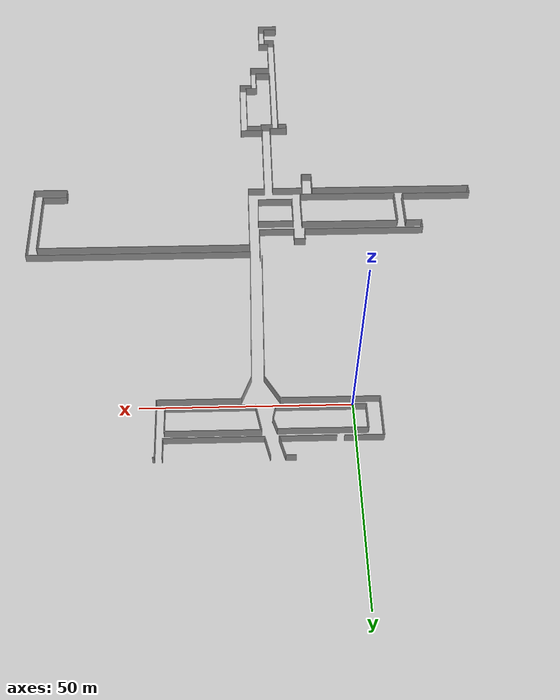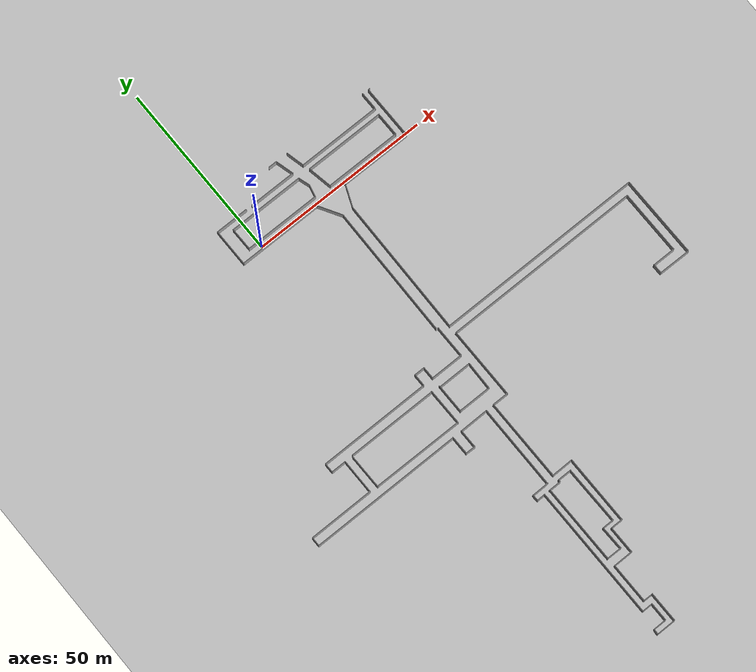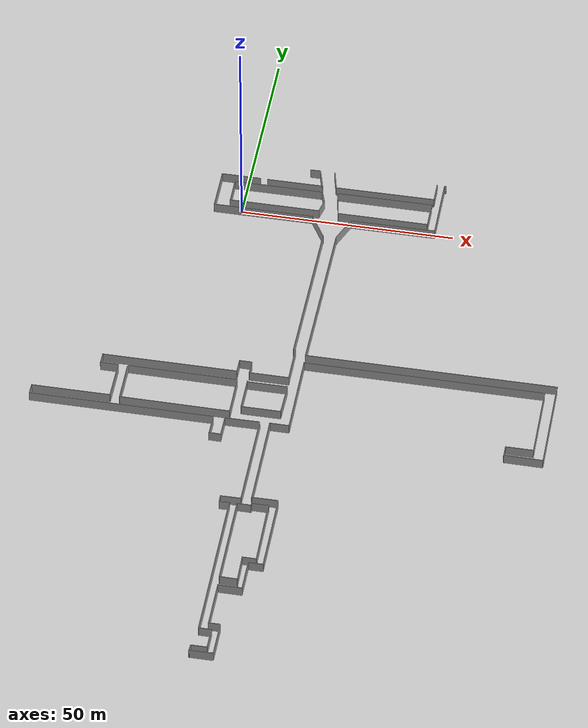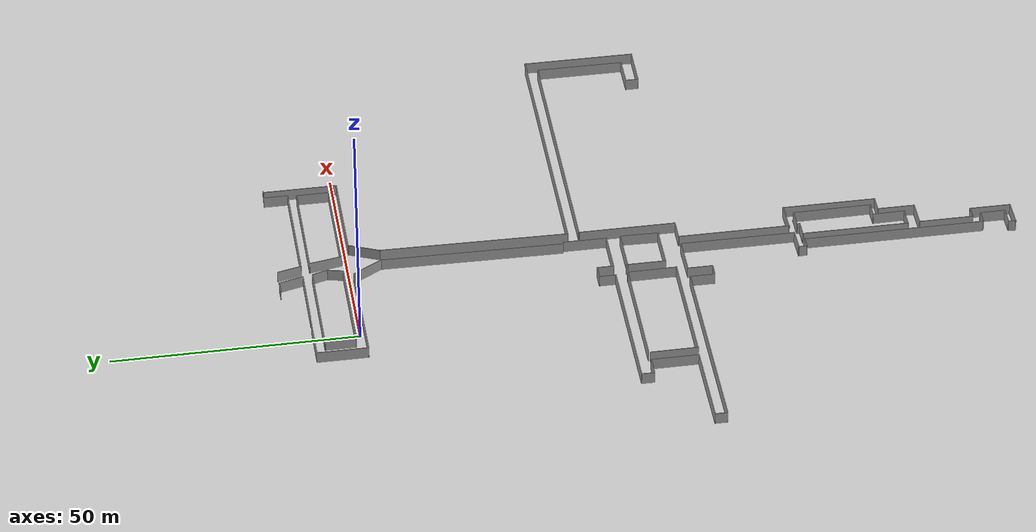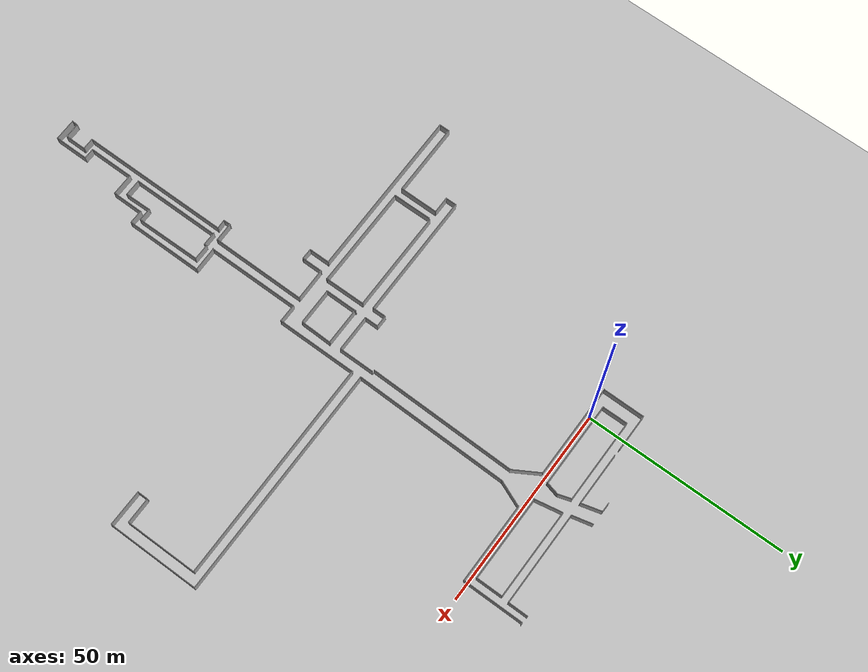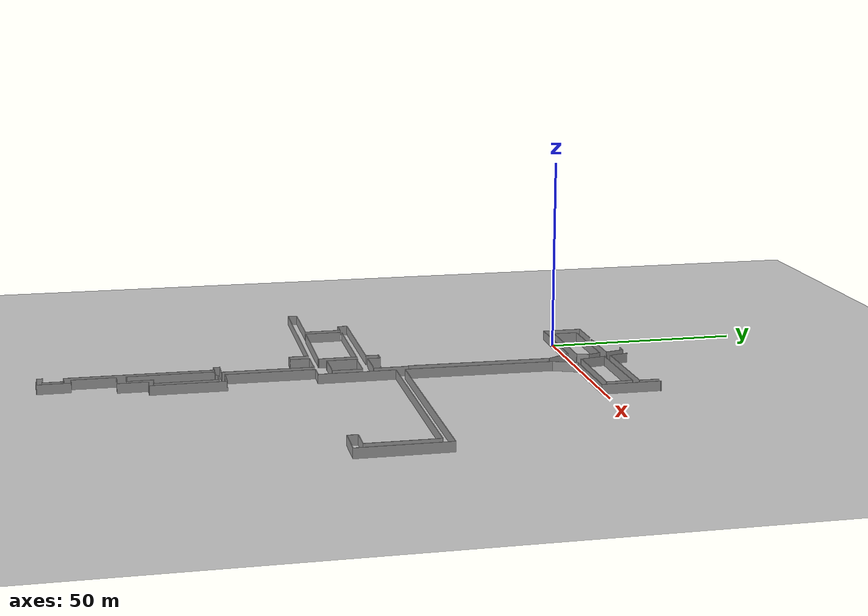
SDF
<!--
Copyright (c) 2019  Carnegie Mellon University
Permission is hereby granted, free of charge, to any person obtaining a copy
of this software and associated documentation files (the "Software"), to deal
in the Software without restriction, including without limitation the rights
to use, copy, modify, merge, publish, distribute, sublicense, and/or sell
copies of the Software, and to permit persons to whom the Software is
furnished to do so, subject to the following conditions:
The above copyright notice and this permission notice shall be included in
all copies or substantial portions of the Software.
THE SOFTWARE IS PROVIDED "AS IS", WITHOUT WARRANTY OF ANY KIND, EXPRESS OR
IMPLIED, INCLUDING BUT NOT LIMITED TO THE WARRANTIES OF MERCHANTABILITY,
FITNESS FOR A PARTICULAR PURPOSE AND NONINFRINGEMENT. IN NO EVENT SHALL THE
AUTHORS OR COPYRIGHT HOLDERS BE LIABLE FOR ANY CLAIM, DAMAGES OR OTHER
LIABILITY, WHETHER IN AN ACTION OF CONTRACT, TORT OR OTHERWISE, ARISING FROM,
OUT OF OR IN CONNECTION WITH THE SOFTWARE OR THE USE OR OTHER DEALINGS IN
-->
<sdf version="1.6">
 <world name="default">
  <model name="ground_plane">
   <static>1</static>
   <link name="link">
    <collision name="collision">
     <geometry><plane><normal>0 0 1</normal><size>100 100</size></plane></geometry>
     <surface><friction><ode><mu>100</mu><mu2>50</mu2></ode></friction></surface>
    </collision>
    <visual name="visual">
     <cast_shadows>0</cast_shadows>
     <geometry><plane><normal>0 0 1</normal><size>100 100</size></plane></geometry>
     <material>
      <script><uri>file://media/materials/scripts/gazebo.material</uri><name>Gazebo/Grey</name></script>
     </material>
    </visual>
   </link>
  </model>
  <model name="CMU">
   <pose>62.2844 43.535 0 0 -0 0</pose>
   <link name="Wall_1">
    <collision name="Wall_1_Collision">
     <geometry><box><size>23.5 0.15 2.5</size></box></geometry>
     <pose>0 0 1.25 0 -0 0</pose>
    </collision>
    <visual name="Wall_1_Visual">
     <pose>0 0 1.25 0 -0 0</pose>
     <geometry><box><size>23.5 0.15 2.5</size></box></geometry>
     <material>
      <script><uri>file://media/materials/scripts/gazebo.material</uri><name>Gazebo/Grey</name></script>
      <ambient>1 1 1 1</ambient>
     </material>
    </visual>
    <pose>-57.0241 -44.4197 0 0 -0 3.14159</pose>
   </link>
   <link name="Wall_100">
    <collision name="Wall_100_Collision">
     <geometry><box><size>21.25 0.15 2.5</size></box></geometry>
     <pose>0 0 1.25 0 -0 0</pose>
    </collision>
    <visual name="Wall_100_Visual">
     <pose>0 0 1.25 0 -0 0</pose>
     <geometry><box><size>21.25 0.15 2.5</size></box></geometry>
     <material>
      <script><uri>file://media/materials/scripts/gazebo.material</uri><name>Gazebo/Grey</name></script>
      <ambient>1 1 1 1</ambient>
     </material>
    </visual>
    <pose>-54.7083 -42.3708 0 0 -0 0</pose>
   </link>
   <link name="Wall_101">
    <collision name="Wall_101_Collision">
     <geometry><box><size>3.37379 0.15 2.5</size></box></geometry>
     <pose>0 0 1.25 0 -0 0</pose>
    </collision>
    <visual name="Wall_101_Visual">
     <pose>0 0 1.25 0 -0 0</pose>
     <geometry><box><size>3.37379 0.15 2.5</size></box></geometry>
     <material>
      <script><uri>file://media/materials/scripts/gazebo.material</uri><name>Gazebo/Grey</name></script>
      <ambient>1 1 1 1</ambient>
     </material>
    </visual>
    <pose>-43.7804 -40.7573 0 0 -0 1.33414</pose>
   </link>
   <link name="Wall_102">
    <collision name="Wall_102_Collision">
     <geometry><box><size>3.40257 0.15 2.5</size></box></geometry>
     <pose>0 0 1.25 0 -0 0</pose>
    </collision>
    <visual name="Wall_102_Visual">
     <pose>0 0 1.25 0 -0 0</pose>
     <geometry><box><size>3.40257 0.15 2.5</size></box></geometry>
     <material>
      <script><uri>file://media/materials/scripts/gazebo.material</uri><name>Gazebo/Grey</name></script>
      <ambient>1 1 1 1</ambient>
     </material>
    </visual>
    <pose>-43.8858 -37.6375 0 0 -0 1.87253</pose>
   </link>
   <link name="Wall_103">
    <collision name="Wall_103_Collision">
     <geometry><box><size>21.0858 0.15 2.5</size></box></geometry>
     <pose>0 0 1.25 0 -0 0</pose>
    </collision>
    <visual name="Wall_103_Visual">
     <pose>0 0 1.25 0 -0 0</pose>
     <geometry><box><size>21.0858 0.15 2.5</size></box></geometry>
     <material>
      <script><uri>file://media/materials/scripts/gazebo.material</uri><name>Gazebo/Grey</name></script>
      <ambient>1 1 1 1</ambient>
     </material>
    </visual>
    <pose>-54.837 -36.0847 0 0 -0 3.14159</pose>
   </link>
   <link name="Wall_105">
    <collision name="Wall_105_Collision">
     <geometry><box><size>21.25 0.15 2.5</size></box></geometry>
     <pose>0 0 1.25 0 -0 0</pose>
    </collision>
    <visual name="Wall_105_Visual">
     <pose>0 0 1.25 0 -0 0</pose>
     <geometry><box><size>21.25 0.15 2.5</size></box></geometry>
     <material>
      <script><uri>file://media/materials/scripts/gazebo.material</uri><name>Gazebo/Grey</name></script>
      <ambient>1 1 1 1</ambient>
     </material>
    </visual>
    <pose>-28.9806 -42.505 0 0 -0 0</pose>
   </link>
   <link name="Wall_106">
    <collision name="Wall_106_Collision">
     <geometry><box><size>6.75 0.15 2.5</size></box></geometry>
     <pose>0 0 1.25 0 -0 0</pose>
    </collision>
    <visual name="Wall_106_Visual">
     <pose>0 0 1.25 0 -0 0</pose>
     <geometry><box><size>6.75 0.15 2.5</size></box></geometry>
     <material>
      <script><uri>file://media/materials/scripts/gazebo.material</uri><name>Gazebo/Grey</name></script>
      <ambient>1 1 1 1</ambient>
     </material>
    </visual>
    <pose>-18.4306 -39.205 0 0 -0 1.5708</pose>
   </link>
   <link name="Wall_107">
    <collision name="Wall_107_Collision">
     <geometry><box><size>22.5 0.15 2.5</size></box></geometry>
     <pose>0 0 1.25 0 -0 0</pose>
    </collision>
    <visual name="Wall_107_Visual">
     <pose>0 0 1.25 0 -0 0</pose>
     <geometry><box><size>22.5 0.15 2.5</size></box></geometry>
     <material>
      <script><uri>file://media/materials/scripts/gazebo.material</uri><name>Gazebo/Grey</name></script>
      <ambient>1 1 1 1</ambient>
     </material>
    </visual>
    <pose>-29.6056 -35.905 0 0 -0 3.14159</pose>
   </link>
   <link name="Wall_108">
    <collision name="Wall_108_Collision">
     <geometry><box><size>6.95877 0.15 2.5</size></box></geometry>
     <pose>0 0 1.25 0 -0 0</pose>
    </collision>
    <visual name="Wall_108_Visual">
     <pose>0 0 1.25 0 -0 0</pose>
     <geometry><box><size>6.95877 0.15 2.5</size></box></geometry>
     <material>
      <script><uri>file://media/materials/scripts/gazebo.material</uri><name>Gazebo/Grey</name></script>
      <ambient>1 1 1 1</ambient>
     </material>
    </visual>
    <pose>-40.1556 -39.2515 0 0 0 -1.38616</pose>
   </link>
   <link name="Wall_110">
    <collision name="Wall_110_Collision">
     <geometry><box><size>5.17157 0.15 2.5</size></box></geometry>
     <pose>0 0 1.25 0 -0 0</pose>
    </collision>
    <visual name="Wall_110_Visual">
     <pose>0 0 1.25 0 -0 0</pose>
     <geometry><box><size>5.17157 0.15 2.5</size></box></geometry>
     <material>
      <script><uri>file://media/materials/scripts/gazebo.material</uri><name>Gazebo/Grey</name></script>
      <ambient>1 1 1 1</ambient>
     </material>
    </visual>
    <pose>-41.9731 -31.6882 0 0 0 -1.33705</pose>
   </link>
   <link name="Wall_111">
    <collision name="Wall_111_Collision">
     <geometry><box><size>23.3656 0.15 2.5</size></box></geometry>
     <pose>0 0 1.25 0 -0 0</pose>
    </collision>
    <visual name="Wall_111_Visual">
     <pose>0 0 1.25 0 -0 0</pose>
     <geometry><box><size>23.3656 0.15 2.5</size></box></geometry>
     <material>
      <script><uri>file://media/materials/scripts/gazebo.material</uri><name>Gazebo/Grey</name></script>
      <ambient>1 1 1 1</ambient>
     </material>
    </visual>
    <pose>-29.7838 -34.1074 0 0 -0 0.002004</pose>
   </link>
   <link name="Wall_112">
    <collision name="Wall_112_Collision">
     <geometry><box><size>5.08241 0.15 2.5</size></box></geometry>
     <pose>0 0 1.25 0 -0 0</pose>
    </collision>
    <visual name="Wall_112_Visual">
     <pose>0 0 1.25 0 -0 0</pose>
     <geometry><box><size>5.08241 0.15 2.5</size></box></geometry>
     <material>
      <script><uri>file://media/materials/scripts/gazebo.material</uri><name>Gazebo/Grey</name></script>
      <ambient>1 1 1 1</ambient>
     </material>
    </visual>
    <pose>-18.1761 -31.6184 0 0 -0 1.5708</pose>
   </link>
   <link name="Wall_115">
    <collision name="Wall_115_Collision">
     <geometry><box><size>20 0.15 2.5</size></box></geometry>
     <pose>0 0 1.25 0 -0 0</pose>
    </collision>
    <visual name="Wall_115_Visual">
     <pose>0 0 1.25 0 -0 0</pose>
     <geometry><box><size>20 0.15 2.5</size></box></geometry>
     <material>
      <script><uri>file://media/materials/scripts/gazebo.material</uri><name>Gazebo/Grey</name></script>
      <ambient>1 1 1 1</ambient>
     </material>
    </visual>
    <pose>-26.3464 -44.3474 0 0 -0 0</pose>
   </link>
   <link name="Wall_116">
    <collision name="Wall_116_Collision">
     <geometry><box><size>15.25 0.15 2.5</size></box></geometry>
     <pose>0 0 1.25 0 -0 0</pose>
    </collision>
    <visual name="Wall_116_Visual">
     <pose>0 0 1.25 0 -0 0</pose>
     <geometry><box><size>15.25 0.15 2.5</size></box></geometry>
     <material>
      <script><uri>file://media/materials/scripts/gazebo.material</uri><name>Gazebo/Grey</name></script>
      <ambient>1 1 1 1</ambient>
     </material>
    </visual>
    <pose>-16.4214 -36.7974 0 0 -0 1.5708</pose>
   </link>
   <link name="Wall_117">
    <collision name="Wall_117_Collision">
     <geometry><box><size>0.5 0.15 2.5</size></box></geometry>
     <pose>0 0 1.25 0 -0 0</pose>
    </collision>
    <visual name="Wall_117_Visual">
     <pose>0 0 1.25 0 -0 0</pose>
     <geometry><box><size>0.5 0.15 2.5</size></box></geometry>
     <material>
      <script><uri>file://media/materials/scripts/gazebo.material</uri><name>Gazebo/Grey</name></script>
      <ambient>1 1 1 1</ambient>
     </material>
    </visual>
    <pose>-16.2464 -29.2474 0 0 -0 0</pose>
   </link>
   <link name="Wall_2">
    <collision name="Wall_2_Collision">
     <geometry><box><size>10.5 0.15 2.5</size></box></geometry>
     <pose>0 0 1.25 0 -0 0</pose>
    </collision>
    <visual name="Wall_2_Visual">
     <pose>0 0 1.25 0 -0 0</pose>
     <geometry><box><size>10.5 0.15 2.5</size></box></geometry>
     <material>
      <script><uri>file://media/materials/scripts/gazebo.material</uri><name>Gazebo/Grey</name></script>
      <ambient>1 1 1 1</ambient>
     </material>
    </visual>
    <pose>-68.6991 -39.2447 0 0 -0 1.5708</pose>
   </link>
   <link name="Wall_226">
    <collision name="Wall_226_Collision">
     <geometry><box><size>7.24322 0.15 2.5</size></box></geometry>
     <pose>0 0 1.25 0 -0 0</pose>
    </collision>
    <visual name="Wall_226_Visual">
     <pose>0 0 1.25 0 -0 0</pose>
     <geometry><box><size>7.24322 0.15 2.5</size></box></geometry>
     <material>
      <script><uri>file://media/materials/scripts/gazebo.material</uri><name>Gazebo/Grey</name></script>
      <ambient>1 1 1 1</ambient>
     </material>
    </visual>
    <pose>-43.5508 -47.4766 0 0 0 -1.03906</pose>
   </link>
   <link name="Wall_227">
    <collision name="Wall_227_Collision">
     <geometry><box><size>37.1315 0.15 2.5</size></box></geometry>
     <pose>0 0 1.25 0 -0 0</pose>
    </collision>
    <visual name="Wall_227_Visual">
     <pose>0 0 1.25 0 -0 0</pose>
     <geometry><box><size>37.1315 0.15 2.5</size></box></geometry>
     <material>
      <script><uri>file://media/materials/scripts/gazebo.material</uri><name>Gazebo/Grey</name></script>
      <ambient>1 1 1 1</ambient>
     </material>
    </visual>
    <pose>-42.0602 -69.0227 0 0 0 -1.58411</pose>
   </link>
   <link name="Wall_229">
    <collision name="Wall_229_Collision">
     <geometry><box><size>6.74296 0.15 2.5</size></box></geometry>
     <pose>0 0 1.25 0 -0 0</pose>
    </collision>
    <visual name="Wall_229_Visual">
     <pose>0 0 1.25 0 -0 0</pose>
     <geometry><box><size>6.74296 0.15 2.5</size></box></geometry>
     <material>
      <script><uri>file://media/materials/scripts/gazebo.material</uri><name>Gazebo/Grey</name></script>
      <ambient>1 1 1 1</ambient>
     </material>
    </visual>
    <pose>-37.4764 -47.4264 0 0 0 -1.96343</pose>
   </link>
   <link name="Wall_230">
    <collision name="Wall_230_Collision">
     <geometry><box><size>38.6696 0.15 2.5</size></box></geometry>
     <pose>0 0 1.25 0 -0 0</pose>
    </collision>
    <visual name="Wall_230_Visual">
     <pose>0 0 1.25 0 -0 0</pose>
     <geometry><box><size>38.6696 0.15 2.5</size></box></geometry>
     <material>
      <script><uri>file://media/materials/scripts/gazebo.material</uri><name>Gazebo/Grey</name></script>
      <ambient>1 1 1 1</ambient>
     </material>
    </visual>
    <pose>-39.0146 -69.7302 0 0 0 -1.58517</pose>
   </link>
   <link name="Wall_232">
    <collision name="Wall_232_Collision">
     <geometry><box><size>58 0.15 2.5</size></box></geometry>
     <pose>0 0 1.25 0 -0 0</pose>
    </collision>
    <visual name="Wall_232_Visual">
     <pose>0 0 1.25 0 -0 0</pose>
     <geometry><box><size>58 0.15 2.5</size></box></geometry>
     <material>
      <script><uri>file://media/materials/scripts/gazebo.material</uri><name>Gazebo/Grey</name></script>
      <ambient>1 1 1 1</ambient>
     </material>
    </visual>
    <pose>-10.2837 -89.0235 0 0 -0 0</pose>
   </link>
   <link name="Wall_233">
    <collision name="Wall_233_Collision">
     <geometry><box><size>23 0.15 2.5</size></box></geometry>
     <pose>0 0 1.25 0 -0 0</pose>
    </collision>
    <visual name="Wall_233_Visual">
     <pose>0 0 1.25 0 -0 0</pose>
     <geometry><box><size>23 0.15 2.5</size></box></geometry>
     <material>
      <script><uri>file://media/materials/scripts/gazebo.material</uri><name>Gazebo/Grey</name></script>
      <ambient>1 1 1 1</ambient>
     </material>
    </visual>
    <pose>18.6413 -100.449 0 0 0 -1.5708</pose>
   </link>
   <link name="Wall_234">
    <collision name="Wall_234_Collision">
     <geometry><box><size>9.04246 0.15 2.5</size></box></geometry>
     <pose>0 0 1.25 0 -0 0</pose>
    </collision>
    <visual name="Wall_234_Visual">
     <pose>0 0 1.25 0 -0 0</pose>
     <geometry><box><size>9.04246 0.15 2.5</size></box></geometry>
     <material>
      <script><uri>file://media/materials/scripts/gazebo.material</uri><name>Gazebo/Grey</name></script>
      <ambient>1 1 1 1</ambient>
     </material>
    </visual>
    <pose>14.1953 -111.833 0 0 -0 3.13255</pose>
   </link>
   <link name="Wall_235">
    <collision name="Wall_235_Collision">
     <geometry><box><size>2.75 0.15 2.5</size></box></geometry>
     <pose>0 0 1.25 0 -0 0</pose>
    </collision>
    <visual name="Wall_235_Visual">
     <pose>0 0 1.25 0 -0 0</pose>
     <geometry><box><size>2.75 0.15 2.5</size></box></geometry>
     <material>
      <script><uri>file://media/materials/scripts/gazebo.material</uri><name>Gazebo/Grey</name></script>
      <ambient>1 1 1 1</ambient>
     </material>
    </visual>
    <pose>9.74922 -110.493 0 0 -0 1.5708</pose>
   </link>
   <link name="Wall_236">
    <collision name="Wall_236_Collision">
     <geometry><box><size>6.5 0.15 2.5</size></box></geometry>
     <pose>0 0 1.25 0 -0 0</pose>
    </collision>
    <visual name="Wall_236_Visual">
     <pose>0 0 1.25 0 -0 0</pose>
     <geometry><box><size>6.5 0.15 2.5</size></box></geometry>
     <material>
      <script><uri>file://media/materials/scripts/gazebo.material</uri><name>Gazebo/Grey</name></script>
      <ambient>1 1 1 1</ambient>
     </material>
    </visual>
    <pose>12.9242 -109.193 0 0 -0 0</pose>
   </link>
   <link name="Wall_237">
    <collision name="Wall_237_Collision">
     <geometry><box><size>18 0.15 2.5</size></box></geometry>
     <pose>0 0 1.25 0 -0 0</pose>
    </collision>
    <visual name="Wall_237_Visual">
     <pose>0 0 1.25 0 -0 0</pose>
     <geometry><box><size>18 0.15 2.5</size></box></geometry>
     <material>
      <script><uri>file://media/materials/scripts/gazebo.material</uri><name>Gazebo/Grey</name></script>
      <ambient>1 1 1 1</ambient>
     </material>
    </visual>
    <pose>16.0992 -100.268 0 0 -0 1.5708</pose>
   </link>
   <link name="Wall_238">
    <collision name="Wall_238_Collision">
     <geometry><box><size>55.5 0.15 2.5</size></box></geometry>
     <pose>0 0 1.25 0 -0 0</pose>
    </collision>
    <visual name="Wall_238_Visual">
     <pose>0 0 1.25 0 -0 0</pose>
     <geometry><box><size>55.5 0.15 2.5</size></box></geometry>
     <material>
      <script><uri>file://media/materials/scripts/gazebo.material</uri><name>Gazebo/Grey</name></script>
      <ambient>1 1 1 1</ambient>
     </material>
    </visual>
    <pose>-11.5758 -91.3431 0 0 -0 3.14159</pose>
   </link>
   <link name="Wall_239">
    <collision name="Wall_239_Collision">
     <geometry><box><size>20 0.15 2.5</size></box></geometry>
     <pose>0 0 1.25 0 -0 0</pose>
    </collision>
    <visual name="Wall_239_Visual">
     <pose>0 0 1.25 0 -0 0</pose>
     <geometry><box><size>20 0.15 2.5</size></box></geometry>
     <material>
      <script><uri>file://media/materials/scripts/gazebo.material</uri><name>Gazebo/Grey</name></script>
      <ambient>1 1 1 1</ambient>
     </material>
    </visual>
    <pose>-39.1893 -101.268 0 0 0 -1.5708</pose>
   </link>
   <link name="Wall_240">
    <collision name="Wall_240_Collision">
     <geometry><box><size>4.6231 0.15 2.5</size></box></geometry>
     <pose>0 0 1.25 0 -0 0</pose>
    </collision>
    <visual name="Wall_240_Visual">
     <pose>0 0 1.25 0 -0 0</pose>
     <geometry><box><size>4.6231 0.15 2.5</size></box></geometry>
     <material>
      <script><uri>file://media/materials/scripts/gazebo.material</uri><name>Gazebo/Grey</name></script>
      <ambient>1 1 1 1</ambient>
     </material>
    </visual>
    <pose>-41.4258 -111.183 0 0 -0 3.13725</pose>
   </link>
   <link name="Wall_241">
    <collision name="Wall_241_Collision">
     <geometry><box><size>23 0.15 2.5</size></box></geometry>
     <pose>0 0 1.25 0 -0 0</pose>
    </collision>
    <visual name="Wall_241_Visual">
     <pose>0 0 1.25 0 -0 0</pose>
     <geometry><box><size>23 0.15 2.5</size></box></geometry>
     <material>
      <script><uri>file://media/materials/scripts/gazebo.material</uri><name>Gazebo/Grey</name></script>
      <ambient>1 1 1 1</ambient>
     </material>
    </visual>
    <pose>-43.6008 -122.66 0 0 0 -1.5708</pose>
   </link>
   <link name="Wall_242">
    <collision name="Wall_242_Collision">
     <geometry><box><size>6.18101 0.15 2.5</size></box></geometry>
     <pose>0 0 1.25 0 -0 0</pose>
    </collision>
    <visual name="Wall_242_Visual">
     <pose>0 0 1.25 0 -0 0</pose>
     <geometry><box><size>6.18101 0.15 2.5</size></box></geometry>
     <material>
      <script><uri>file://media/materials/scripts/gazebo.material</uri><name>Gazebo/Grey</name></script>
      <ambient>1 1 1 1</ambient>
     </material>
    </visual>
    <pose>-40.647 -133.993 0 0 -0 0.010202</pose>
   </link>
   <link name="Wall_243">
    <collision name="Wall_243_Collision">
     <geometry><box><size>19.25 0.15 2.5</size></box></geometry>
     <pose>0 0 1.25 0 -0 0</pose>
    </collision>
    <visual name="Wall_243_Visual">
     <pose>0 0 1.25 0 -0 0</pose>
     <geometry><box><size>19.25 0.15 2.5</size></box></geometry>
     <material>
      <script><uri>file://media/materials/scripts/gazebo.material</uri><name>Gazebo/Grey</name></script>
      <ambient>1 1 1 1</ambient>
     </material>
    </visual>
    <pose>-37.6316 -143.512 0 0 0 -1.5708</pose>
   </link>
   <link name="Wall_244">
    <collision name="Wall_244_Collision">
     <geometry><box><size>3.49625 0.15 2.5</size></box></geometry>
     <pose>0 0 1.25 0 -0 0</pose>
    </collision>
    <visual name="Wall_244_Visual">
     <pose>0 0 1.25 0 -0 0</pose>
     <geometry><box><size>3.49625 0.15 2.5</size></box></geometry>
     <material>
      <script><uri>file://media/materials/scripts/gazebo.material</uri><name>Gazebo/Grey</name></script>
      <ambient>1 1 1 1</ambient>
     </material>
    </visual>
    <pose>-39.3047 -153.062 0 0 -0 3.14159</pose>
   </link>
   <link name="Wall_245">
    <collision name="Wall_245_Collision">
     <geometry><box><size>7.75 0.15 2.5</size></box></geometry>
     <pose>0 0 1.25 0 -0 0</pose>
    </collision>
    <visual name="Wall_245_Visual">
     <pose>0 0 1.25 0 -0 0</pose>
     <geometry><box><size>7.75 0.15 2.5</size></box></geometry>
     <material>
      <script><uri>file://media/materials/scripts/gazebo.material</uri><name>Gazebo/Grey</name></script>
      <ambient>1 1 1 1</ambient>
     </material>
    </visual>
    <pose>-40.9427 -156.862 0 0 0 -1.5708</pose>
   </link>
   <link name="Wall_246">
    <collision name="Wall_246_Collision">
     <geometry><box><size>5.50375 0.15 2.5</size></box></geometry>
     <pose>0 0 1.25 0 -0 0</pose>
    </collision>
    <visual name="Wall_246_Visual">
     <pose>0 0 1.25 0 -0 0</pose>
     <geometry><box><size>5.50375 0.15 2.5</size></box></geometry>
     <material>
      <script><uri>file://media/materials/scripts/gazebo.material</uri><name>Gazebo/Grey</name></script>
      <ambient>1 1 1 1</ambient>
     </material>
    </visual>
    <pose>-43.6547 -160.662 0 0 -0 3.14159</pose>
   </link>
   <link name="Wall_247">
    <collision name="Wall_247_Collision">
     <geometry><box><size>11.25 0.15 2.5</size></box></geometry>
     <pose>0 0 1.25 0 -0 0</pose>
    </collision>
    <visual name="Wall_247_Visual">
     <pose>0 0 1.25 0 -0 0</pose>
     <geometry><box><size>11.25 0.15 2.5</size></box></geometry>
     <material>
      <script><uri>file://media/materials/scripts/gazebo.material</uri><name>Gazebo/Grey</name></script>
      <ambient>1 1 1 1</ambient>
     </material>
    </visual>
    <pose>-46.3316 -166.212 0 0 0 -1.5708</pose>
   </link>
   <link name="Wall_248">
    <collision name="Wall_248_Collision">
     <geometry><box><size>2.75 0.15 2.5</size></box></geometry>
     <pose>0 0 1.25 0 -0 0</pose>
    </collision>
    <visual name="Wall_248_Visual">
     <pose>0 0 1.25 0 -0 0</pose>
     <geometry><box><size>2.75 0.15 2.5</size></box></geometry>
     <material>
      <script><uri>file://media/materials/scripts/gazebo.material</uri><name>Gazebo/Grey</name></script>
      <ambient>1 1 1 1</ambient>
     </material>
    </visual>
    <pose>-45.0316 -171.762 0 0 -0 0</pose>
   </link>
   <link name="Wall_249">
    <collision name="Wall_249_Collision">
     <geometry><box><size>8.5 0.15 2.5</size></box></geometry>
     <pose>0 0 1.25 0 -0 0</pose>
    </collision>
    <visual name="Wall_249_Visual">
     <pose>0 0 1.25 0 -0 0</pose>
     <geometry><box><size>8.5 0.15 2.5</size></box></geometry>
     <material>
      <script><uri>file://media/materials/scripts/gazebo.material</uri><name>Gazebo/Grey</name></script>
      <ambient>1 1 1 1</ambient>
     </material>
    </visual>
    <pose>-43.7316 -175.937 0 0 0 -1.5708</pose>
   </link>
   <link name="Wall_250">
    <collision name="Wall_250_Collision">
     <geometry><box><size>5.5 0.15 2.5</size></box></geometry>
     <pose>0 0 1.25 0 -0 0</pose>
    </collision>
    <visual name="Wall_250_Visual">
     <pose>0 0 1.25 0 -0 0</pose>
     <geometry><box><size>5.5 0.15 2.5</size></box></geometry>
     <material>
      <script><uri>file://media/materials/scripts/gazebo.material</uri><name>Gazebo/Grey</name></script>
      <ambient>1 1 1 1</ambient>
     </material>
    </visual>
    <pose>-46.4066 -180.112 0 0 -0 3.14159</pose>
   </link>
   <link name="Wall_251">
    <collision name="Wall_251_Collision">
     <geometry><box><size>1.62148 0.15 2.5</size></box></geometry>
     <pose>0 0 1.25 0 -0 0</pose>
    </collision>
    <visual name="Wall_251_Visual">
     <pose>0 0 1.25 0 -0 0</pose>
     <geometry><box><size>1.62148 0.15 2.5</size></box></geometry>
     <material>
      <script><uri>file://media/materials/scripts/gazebo.material</uri><name>Gazebo/Grey</name></script>
      <ambient>1 1 1 1</ambient>
     </material>
    </visual>
    <pose>-49.0245 -179.379 0 0 -0 1.49314</pose>
   </link>
   <link name="Wall_252">
    <collision name="Wall_252_Collision">
     <geometry><box><size>3.75 0.15 2.5</size></box></geometry>
     <pose>0 0 1.25 0 -0 0</pose>
    </collision>
    <visual name="Wall_252_Visual">
     <pose>0 0 1.25 0 -0 0</pose>
     <geometry><box><size>3.75 0.15 2.5</size></box></geometry>
     <material>
      <script><uri>file://media/materials/scripts/gazebo.material</uri><name>Gazebo/Grey</name></script>
      <ambient>1 1 1 1</ambient>
     </material>
    </visual>
    <pose>-47.1675 -178.645 0 0 -0 0</pose>
   </link>
   <link name="Wall_253">
    <collision name="Wall_253_Collision">
     <geometry><box><size>5.25 0.15 2.5</size></box></geometry>
     <pose>0 0 1.25 0 -0 0</pose>
    </collision>
    <visual name="Wall_253_Visual">
     <pose>0 0 1.25 0 -0 0</pose>
     <geometry><box><size>5.25 0.15 2.5</size></box></geometry>
     <material>
      <script><uri>file://media/materials/scripts/gazebo.material</uri><name>Gazebo/Grey</name></script>
      <ambient>1 1 1 1</ambient>
     </material>
    </visual>
    <pose>-45.3675 -176.095 0 0 -0 1.5708</pose>
   </link>
   <link name="Wall_254">
    <collision name="Wall_254_Collision">
     <geometry><box><size>3 0.15 2.5</size></box></geometry>
     <pose>0 0 1.25 0 -0 0</pose>
    </collision>
    <visual name="Wall_254_Visual">
     <pose>0 0 1.25 0 -0 0</pose>
     <geometry><box><size>3 0.15 2.5</size></box></geometry>
     <material>
      <script><uri>file://media/materials/scripts/gazebo.material</uri><name>Gazebo/Grey</name></script>
      <ambient>1 1 1 1</ambient>
     </material>
    </visual>
    <pose>-46.7925 -173.545 0 0 -0 3.14159</pose>
   </link>
   <link name="Wall_255">
    <collision name="Wall_255_Collision">
     <geometry><box><size>37.3541 0.15 2.5</size></box></geometry>
     <pose>0 0 1.25 0 -0 0</pose>
    </collision>
    <visual name="Wall_255_Visual">
     <pose>0 0 1.25 0 -0 0</pose>
     <geometry><box><size>37.3541 0.15 2.5</size></box></geometry>
     <material>
      <script><uri>file://media/materials/scripts/gazebo.material</uri><name>Gazebo/Grey</name></script>
      <ambient>1 1 1 1</ambient>
     </material>
    </visual>
    <pose>-48.231 -154.943 0 0 -0 1.57153</pose>
   </link>
   <link name="Wall_256">
    <collision name="Wall_256_Collision">
     <geometry><box><size>2.44902 0.15 2.5</size></box></geometry>
     <pose>0 0 1.25 0 -0 0</pose>
    </collision>
    <visual name="Wall_256_Visual">
     <pose>0 0 1.25 0 -0 0</pose>
     <geometry><box><size>2.44902 0.15 2.5</size></box></geometry>
     <material>
      <script><uri>file://media/materials/scripts/gazebo.material</uri><name>Gazebo/Grey</name></script>
      <ambient>1 1 1 1</ambient>
     </material>
    </visual>
    <pose>-49.3525 -136.392 0 0 0 -3.09722</pose>
   </link>
   <link name="Wall_257">
    <collision name="Wall_257_Collision">
     <geometry><box><size>1.8321 0.15 2.5</size></box></geometry>
     <pose>0 0 1.25 0 -0 0</pose>
    </collision>
    <visual name="Wall_257_Visual">
     <pose>0 0 1.25 0 -0 0</pose>
     <geometry><box><size>1.8321 0.15 2.5</size></box></geometry>
     <material>
      <script><uri>file://media/materials/scripts/gazebo.material</uri><name>Gazebo/Grey</name></script>
      <ambient>1 1 1 1</ambient>
     </material>
    </visual>
    <pose>-50.5317 -135.541 0 0 -0 1.60738</pose>
   </link>
   <link name="Wall_258">
    <collision name="Wall_258_Collision">
     <geometry><box><size>4.83138 0.15 2.5</size></box></geometry>
     <pose>0 0 1.25 0 -0 0</pose>
    </collision>
    <visual name="Wall_258_Visual">
     <pose>0 0 1.25 0 -0 0</pose>
     <geometry><box><size>4.83138 0.15 2.5</size></box></geometry>
     <material>
      <script><uri>file://media/materials/scripts/gazebo.material</uri><name>Gazebo/Grey</name></script>
      <ambient>1 1 1 1</ambient>
     </material>
    </visual>
    <pose>-48.222 -134.731 0 0 -0 0.013143</pose>
   </link>
   <link name="Wall_259">
    <collision name="Wall_259_Collision">
     <geometry><box><size>23.6154 0.15 2.5</size></box></geometry>
     <pose>0 0 1.25 0 -0 0</pose>
    </collision>
    <visual name="Wall_259_Visual">
     <pose>0 0 1.25 0 -0 0</pose>
     <geometry><box><size>23.6154 0.15 2.5</size></box></geometry>
     <material>
      <script><uri>file://media/materials/scripts/gazebo.material</uri><name>Gazebo/Grey</name></script>
      <ambient>1 1 1 1</ambient>
     </material>
    </visual>
    <pose>-45.9122 -122.968 0 0 -0 1.56817</pose>
   </link>
   <link name="Wall_260">
    <collision name="Wall_260_Collision">
     <geometry><box><size>8.0851 0.15 2.5</size></box></geometry>
     <pose>0 0 1.25 0 -0 0</pose>
    </collision>
    <visual name="Wall_260_Visual">
     <pose>0 0 1.25 0 -0 0</pose>
     <geometry><box><size>8.0851 0.15 2.5</size></box></geometry>
     <material>
      <script><uri>file://media/materials/scripts/gazebo.material</uri><name>Gazebo/Grey</name></script>
      <ambient>1 1 1 1</ambient>
     </material>
    </visual>
    <pose>-49.9104 -111.266 0 0 0 -3.13384</pose>
   </link>
   <link name="Wall_261">
    <collision name="Wall_261_Collision">
     <geometry><box><size>5.25 0.15 2.5</size></box></geometry>
     <pose>0 0 1.25 0 -0 0</pose>
    </collision>
    <visual name="Wall_261_Visual">
     <pose>0 0 1.25 0 -0 0</pose>
     <geometry><box><size>5.25 0.15 2.5</size></box></geometry>
     <material>
      <script><uri>file://media/materials/scripts/gazebo.material</uri><name>Gazebo/Grey</name></script>
      <ambient>1 1 1 1</ambient>
     </material>
    </visual>
    <pose>-53.8779 -113.785 0 0 0 -1.5708</pose>
   </link>
   <link name="Wall_262">
    <collision name="Wall_262_Collision">
     <geometry><box><size>2.80058 0.15 2.5</size></box></geometry>
     <pose>0 0 1.25 0 -0 0</pose>
    </collision>
    <visual name="Wall_262_Visual">
     <pose>0 0 1.25 0 -0 0</pose>
     <geometry><box><size>2.80058 0.15 2.5</size></box></geometry>
     <material>
      <script><uri>file://media/materials/scripts/gazebo.material</uri><name>Gazebo/Grey</name></script>
      <ambient>1 1 1 1</ambient>
     </material>
    </visual>
    <pose>-55.2028 -116.366 0 0 -0 3.11838</pose>
   </link>
   <link name="Wall_263">
    <collision name="Wall_263_Collision">
     <geometry><box><size>5.1807 0.15 2.5</size></box></geometry>
     <pose>0 0 1.25 0 -0 0</pose>
    </collision>
    <visual name="Wall_263_Visual">
     <pose>0 0 1.25 0 -0 0</pose>
     <geometry><box><size>5.1807 0.15 2.5</size></box></geometry>
     <material>
      <script><uri>file://media/materials/scripts/gazebo.material</uri><name>Gazebo/Grey</name></script>
      <ambient>1 1 1 1</ambient>
     </material>
    </visual>
    <pose>-56.5277 -113.758 0 0 -0 1.5708</pose>
   </link>
   <link name="Wall_264">
    <collision name="Wall_264_Collision">
     <geometry><box><size>42.5039 0.15 2.5</size></box></geometry>
     <pose>0 0 1.25 0 -0 0</pose>
    </collision>
    <visual name="Wall_264_Visual">
     <pose>0 0 1.25 0 -0 0</pose>
     <geometry><box><size>42.5039 0.15 2.5</size></box></geometry>
     <material>
      <script><uri>file://media/materials/scripts/gazebo.material</uri><name>Gazebo/Grey</name></script>
      <ambient>1 1 1 1</ambient>
     </material>
    </visual>
    <pose>-77.7047 -111.274 0 0 -0 3.14014</pose>
   </link>
   <link name="Wall_265">
    <collision name="Wall_265_Collision">
     <geometry><box><size>2.5693 0.15 2.5</size></box></geometry>
     <pose>0 0 1.25 0 -0 0</pose>
    </collision>
    <visual name="Wall_265_Visual">
     <pose>0 0 1.25 0 -0 0</pose>
     <geometry><box><size>2.5693 0.15 2.5</size></box></geometry>
     <material>
      <script><uri>file://media/materials/scripts/gazebo.material</uri><name>Gazebo/Grey</name></script>
      <ambient>1 1 1 1</ambient>
     </material>
    </visual>
    <pose>-98.8816 -109.972 0 0 -0 1.5708</pose>
   </link>
   <link name="Wall_266">
    <collision name="Wall_266_Collision">
     <geometry><box><size>18.25 0.15 2.5</size></box></geometry>
     <pose>0 0 1.25 0 -0 0</pose>
    </collision>
    <visual name="Wall_266_Visual">
     <pose>0 0 1.25 0 -0 0</pose>
     <geometry><box><size>18.25 0.15 2.5</size></box></geometry>
     <material>
      <script><uri>file://media/materials/scripts/gazebo.material</uri><name>Gazebo/Grey</name></script>
      <ambient>1 1 1 1</ambient>
     </material>
    </visual>
    <pose>-89.8316 -108.762 0 0 -0 0</pose>
   </link>
   <link name="Wall_267">
    <collision name="Wall_267_Collision">
     <geometry><box><size>9.75 0.15 2.5</size></box></geometry>
     <pose>0 0 1.25 0 -0 0</pose>
    </collision>
    <visual name="Wall_267_Visual">
     <pose>0 0 1.25 0 -0 0</pose>
     <geometry><box><size>9.75 0.15 2.5</size></box></geometry>
     <material>
      <script><uri>file://media/materials/scripts/gazebo.material</uri><name>Gazebo/Grey</name></script>
      <ambient>1 1 1 1</ambient>
     </material>
    </visual>
    <pose>-80.7816 -103.962 0 0 -0 1.5708</pose>
   </link>
   <link name="Wall_268">
    <collision name="Wall_268_Collision">
     <geometry><box><size>4.25 0.15 2.5</size></box></geometry>
     <pose>0 0 1.25 0 -0 0</pose>
    </collision>
    <visual name="Wall_268_Visual">
     <pose>0 0 1.25 0 -0 0</pose>
     <geometry><box><size>4.25 0.15 2.5</size></box></geometry>
     <material>
      <script><uri>file://media/materials/scripts/gazebo.material</uri><name>Gazebo/Grey</name></script>
      <ambient>1 1 1 1</ambient>
     </material>
    </visual>
    <pose>-82.8316 -99.1621 0 0 -0 3.14159</pose>
   </link>
   <link name="Wall_269">
    <collision name="Wall_269_Collision">
     <geometry><box><size>2.75 0.15 2.5</size></box></geometry>
     <pose>0 0 1.25 0 -0 0</pose>
    </collision>
    <visual name="Wall_269_Visual">
     <pose>0 0 1.25 0 -0 0</pose>
     <geometry><box><size>2.75 0.15 2.5</size></box></geometry>
     <material>
      <script><uri>file://media/materials/scripts/gazebo.material</uri><name>Gazebo/Grey</name></script>
      <ambient>1 1 1 1</ambient>
     </material>
    </visual>
    <pose>-84.8816 -97.8621 0 0 -0 1.5708</pose>
   </link>
   <link name="Wall_270">
    <collision name="Wall_270_Collision">
     <geometry><box><size>31.25 0.15 2.5</size></box></geometry>
     <pose>0 0 1.25 0 -0 0</pose>
    </collision>
    <visual name="Wall_270_Visual">
     <pose>0 0 1.25 0 -0 0</pose>
     <geometry><box><size>31.25 0.15 2.5</size></box></geometry>
     <material>
      <script><uri>file://media/materials/scripts/gazebo.material</uri><name>Gazebo/Grey</name></script>
      <ambient>1 1 1 1</ambient>
     </material>
    </visual>
    <pose>-69.3316 -96.5621 0 0 -0 0</pose>
   </link>
   <link name="Wall_271">
    <collision name="Wall_271_Collision">
     <geometry><box><size>3.5 0.15 2.5</size></box></geometry>
     <pose>0 0 1.25 0 -0 0</pose>
    </collision>
    <visual name="Wall_271_Visual">
     <pose>0 0 1.25 0 -0 0</pose>
     <geometry><box><size>3.5 0.15 2.5</size></box></geometry>
     <material>
      <script><uri>file://media/materials/scripts/gazebo.material</uri><name>Gazebo/Grey</name></script>
      <ambient>1 1 1 1</ambient>
     </material>
    </visual>
    <pose>-53.7816 -94.8871 0 0 -0 1.5708</pose>
   </link>
   <link name="Wall_272">
    <collision name="Wall_272_Collision">
     <geometry><box><size>3 0.15 2.5</size></box></geometry>
     <pose>0 0 1.25 0 -0 0</pose>
    </collision>
    <visual name="Wall_272_Visual">
     <pose>0 0 1.25 0 -0 0</pose>
     <geometry><box><size>3 0.15 2.5</size></box></geometry>
     <material>
      <script><uri>file://media/materials/scripts/gazebo.material</uri><name>Gazebo/Grey</name></script>
      <ambient>1 1 1 1</ambient>
     </material>
    </visual>
    <pose>-52.3566 -93.2121 0 0 -0 0</pose>
   </link>
   <link name="Wall_273">
    <collision name="Wall_273_Collision">
     <geometry><box><size>3.5 0.15 2.5</size></box></geometry>
     <pose>0 0 1.25 0 -0 0</pose>
    </collision>
    <visual name="Wall_273_Visual">
     <pose>0 0 1.25 0 -0 0</pose>
     <geometry><box><size>3.5 0.15 2.5</size></box></geometry>
     <material>
      <script><uri>file://media/materials/scripts/gazebo.material</uri><name>Gazebo/Grey</name></script>
      <ambient>1 1 1 1</ambient>
     </material>
    </visual>
    <pose>-50.9316 -94.8871 0 0 0 -1.5708</pose>
   </link>
   <link name="Wall_274">
    <collision name="Wall_274_Collision">
     <geometry><box><size>9.25 0.15 2.5</size></box></geometry>
     <pose>0 0 1.25 0 -0 0</pose>
    </collision>
    <visual name="Wall_274_Visual">
     <pose>0 0 1.25 0 -0 0</pose>
     <geometry><box><size>9.25 0.15 2.5</size></box></geometry>
     <material>
      <script><uri>file://media/materials/scripts/gazebo.material</uri><name>Gazebo/Grey</name></script>
      <ambient>1 1 1 1</ambient>
     </material>
    </visual>
    <pose>-46.3816 -96.5621 0 0 -0 0</pose>
   </link>
   <link name="Wall_275">
    <collision name="Wall_275_Collision">
     <geometry><box><size>9 0.15 2.5</size></box></geometry>
     <pose>0 0 1.25 0 -0 0</pose>
    </collision>
    <visual name="Wall_275_Visual">
     <pose>0 0 1.25 0 -0 0</pose>
     <geometry><box><size>9 0.15 2.5</size></box></geometry>
     <material>
      <script><uri>file://media/materials/scripts/gazebo.material</uri><name>Gazebo/Grey</name></script>
      <ambient>1 1 1 1</ambient>
     </material>
    </visual>
    <pose>-41.8316 -92.1371 0 0 -0 1.5708</pose>
   </link>
   <link name="Wall_277">
    <collision name="Wall_277_Collision">
     <geometry><box><size>9.74631 0.15 2.5</size></box></geometry>
     <pose>0 0 1.25 0 -0 0</pose>
    </collision>
    <visual name="Wall_277_Visual">
     <pose>0 0 1.25 0 -0 0</pose>
     <geometry><box><size>9.74631 0.15 2.5</size></box></geometry>
     <material>
      <script><uri>file://media/materials/scripts/gazebo.material</uri><name>Gazebo/Grey</name></script>
      <ambient>1 1 1 1</ambient>
     </material>
    </visual>
    <pose>-78.5714 -104.211 0 0 0 -1.56438</pose>
   </link>
   <link name="Wall_278">
    <collision name="Wall_278_Collision">
     <geometry><box><size>25.5042 0.15 2.5</size></box></geometry>
     <pose>0 0 1.25 0 -0 0</pose>
    </collision>
    <visual name="Wall_278_Visual">
     <pose>0 0 1.25 0 -0 0</pose>
     <geometry><box><size>25.5042 0.15 2.5</size></box></geometry>
     <material>
      <script><uri>file://media/materials/scripts/gazebo.material</uri><name>Gazebo/Grey</name></script>
      <ambient>1 1 1 1</ambient>
     </material>
    </visual>
    <pose>-65.8637 -109.009 0 0 0 -0.004853</pose>
   </link>
   <link name="Wall_279">
    <collision name="Wall_279_Collision">
     <geometry><box><size>10.2346 0.15 2.5</size></box></geometry>
     <pose>0 0 1.25 0 -0 0</pose>
    </collision>
    <visual name="Wall_279_Visual">
     <pose>0 0 1.25 0 -0 0</pose>
     <geometry><box><size>10.2346 0.15 2.5</size></box></geometry>
     <material>
      <script><uri>file://media/materials/scripts/gazebo.material</uri><name>Gazebo/Grey</name></script>
      <ambient>1 1 1 1</ambient>
     </material>
    </visual>
    <pose>-53.2175 -104.09 0 0 -0 1.5769</pose>
   </link>
   <link name="Wall_280">
    <collision name="Wall_280_Collision">
     <geometry><box><size>25.254 0.15 2.5</size></box></geometry>
     <pose>0 0 1.25 0 -0 0</pose>
    </collision>
    <visual name="Wall_280_Visual">
     <pose>0 0 1.25 0 -0 0</pose>
     <geometry><box><size>25.254 0.15 2.5</size></box></geometry>
     <material>
      <script><uri>file://media/materials/scripts/gazebo.material</uri><name>Gazebo/Grey</name></script>
      <ambient>1 1 1 1</ambient>
     </material>
    </visual>
    <pose>-65.8002 -99.0785 0 0 -0 3.13914</pose>
   </link>
   <link name="Wall_282">
    <collision name="Wall_282_Collision">
     <geometry><box><size>8.24222 0.15 2.5</size></box></geometry>
     <pose>0 0 1.25 0 -0 0</pose>
    </collision>
    <visual name="Wall_282_Visual">
     <pose>0 0 1.25 0 -0 0</pose>
     <geometry><box><size>8.24222 0.15 2.5</size></box></geometry>
     <material>
      <script><uri>file://media/materials/scripts/gazebo.material</uri><name>Gazebo/Grey</name></script>
      <ambient>1 1 1 1</ambient>
     </material>
    </visual>
    <pose>-50.8969 -103.243 0 0 0 -1.5708</pose>
   </link>
   <link name="Wall_283">
    <collision name="Wall_283_Collision">
     <geometry><box><size>9.25 0.15 2.5</size></box></geometry>
     <pose>0 0 1.25 0 -0 0</pose>
    </collision>
    <visual name="Wall_283_Visual">
     <pose>0 0 1.25 0 -0 0</pose>
     <geometry><box><size>9.25 0.15 2.5</size></box></geometry>
     <material>
      <script><uri>file://media/materials/scripts/gazebo.material</uri><name>Gazebo/Grey</name></script>
      <ambient>1 1 1 1</ambient>
     </material>
    </visual>
    <pose>-46.3468 -107.227 0 0 -0 0</pose>
   </link>
   <link name="Wall_284">
    <collision name="Wall_284_Collision">
     <geometry><box><size>7.93284 0.15 2.5</size></box></geometry>
     <pose>0 0 1.25 0 -0 0</pose>
    </collision>
    <visual name="Wall_284_Visual">
     <pose>0 0 1.25 0 -0 0</pose>
     <geometry><box><size>7.93284 0.15 2.5</size></box></geometry>
     <material>
      <script><uri>file://media/materials/scripts/gazebo.material</uri><name>Gazebo/Grey</name></script>
      <ambient>1 1 1 1</ambient>
     </material>
    </visual>
    <pose>-41.7054 -103.337 0 0 -0 1.54729</pose>
   </link>
   <link name="Wall_285">
    <collision name="Wall_285_Collision">
     <geometry><box><size>9.25 0.15 2.5</size></box></geometry>
     <pose>0 0 1.25 0 -0 0</pose>
    </collision>
    <visual name="Wall_285_Visual">
     <pose>0 0 1.25 0 -0 0</pose>
     <geometry><box><size>9.25 0.15 2.5</size></box></geometry>
     <material>
      <script><uri>file://media/materials/scripts/gazebo.material</uri><name>Gazebo/Grey</name></script>
      <ambient>1 1 1 1</ambient>
     </material>
    </visual>
    <pose>-46.3804 -99.4466 0 0 -0 3.14159</pose>
   </link>
   <link name="Wall_287">
    <collision name="Wall_287_Collision">
     <geometry><box><size>21.9925 0.15 2.5</size></box></geometry>
     <pose>0 0 1.25 0 -0 0</pose>
    </collision>
    <visual name="Wall_287_Visual">
     <pose>0 0 1.25 0 -0 0</pose>
     <geometry><box><size>21.9925 0.15 2.5</size></box></geometry>
     <material>
      <script><uri>file://media/materials/scripts/gazebo.material</uri><name>Gazebo/Grey</name></script>
      <ambient>1 1 1 1</ambient>
     </material>
    </visual>
    <pose>-46.4853 -147.345 0 0 0 -1.56919</pose>
   </link>
   <link name="Wall_288">
    <collision name="Wall_288_Collision">
     <geometry><box><size>4.21857 0.15 2.5</size></box></geometry>
     <pose>0 0 1.25 0 -0 0</pose>
    </collision>
    <visual name="Wall_288_Visual">
     <pose>0 0 1.25 0 -0 0</pose>
     <geometry><box><size>4.21857 0.15 2.5</size></box></geometry>
     <material>
      <script><uri>file://media/materials/scripts/gazebo.material</uri><name>Gazebo/Grey</name></script>
      <ambient>1 1 1 1</ambient>
     </material>
    </visual>
    <pose>-44.4335 -158.249 0 0 0 -0.008646</pose>
   </link>
   <link name="Wall_289">
    <collision name="Wall_289_Collision">
     <geometry><box><size>6.67921 0.15 2.5</size></box></geometry>
     <pose>0 0 1.25 0 -0 0</pose>
    </collision>
    <visual name="Wall_289_Visual">
     <pose>0 0 1.25 0 -0 0</pose>
     <geometry><box><size>6.67921 0.15 2.5</size></box></geometry>
     <material>
      <script><uri>file://media/materials/scripts/gazebo.material</uri><name>Gazebo/Grey</name></script>
      <ambient>1 1 1 1</ambient>
     </material>
    </visual>
    <pose>-42.4582 -155.038 0 0 -0 1.58889</pose>
   </link>
   <link name="Wall_290">
    <collision name="Wall_290_Collision">
     <geometry><box><size>3.25 0.15 2.5</size></box></geometry>
     <pose>0 0 1.25 0 -0 0</pose>
    </collision>
    <visual name="Wall_290_Visual">
     <pose>0 0 1.25 0 -0 0</pose>
     <geometry><box><size>3.25 0.15 2.5</size></box></geometry>
     <material>
      <script><uri>file://media/materials/scripts/gazebo.material</uri><name>Gazebo/Grey</name></script>
      <ambient>1 1 1 1</ambient>
     </material>
    </visual>
    <pose>-40.9673 -151.773 0 0 -0 0</pose>
   </link>
   <link name="Wall_291">
    <collision name="Wall_291_Collision">
     <geometry><box><size>16.18 0.15 2.5</size></box></geometry>
     <pose>0 0 1.25 0 -0 0</pose>
    </collision>
    <visual name="Wall_291_Visual">
     <pose>0 0 1.25 0 -0 0</pose>
     <geometry><box><size>16.18 0.15 2.5</size></box></geometry>
     <material>
      <script><uri>file://media/materials/scripts/gazebo.material</uri><name>Gazebo/Grey</name></script>
      <ambient>1 1 1 1</ambient>
     </material>
    </visual>
    <pose>-39.4525 -143.759 0 0 -0 1.57957</pose>
   </link>
   <link name="Wall_292">
    <collision name="Wall_292_Collision">
     <geometry><box><size>4 0.15 2.5</size></box></geometry>
     <pose>0 0 1.25 0 -0 0</pose>
    </collision>
    <visual name="Wall_292_Visual">
     <pose>0 0 1.25 0 -0 0</pose>
     <geometry><box><size>4 0.15 2.5</size></box></geometry>
     <material>
      <script><uri>file://media/materials/scripts/gazebo.material</uri><name>Gazebo/Grey</name></script>
      <ambient>1 1 1 1</ambient>
     </material>
    </visual>
    <pose>-41.3863 -135.744 0 0 -0 3.14159</pose>
   </link>
   <link name="Wall_294">
    <collision name="Wall_294_Collision">
     <geometry><box><size>0.75 0.15 2.5</size></box></geometry>
     <pose>0 0 1.25 0 -0 0</pose>
    </collision>
    <visual name="Wall_294_Visual">
     <pose>0 0 1.25 0 -0 0</pose>
     <geometry><box><size>0.75 0.15 2.5</size></box></geometry>
     <material>
      <script><uri>file://media/materials/scripts/gazebo.material</uri><name>Gazebo/Grey</name></script>
      <ambient>1 1 1 1</ambient>
     </material>
    </visual>
    <pose>-43.3113 -136.044 0 0 0 -1.5708</pose>
   </link>
   <link name="Wall_295">
    <collision name="Wall_295_Collision">
     <geometry><box><size>3.5 0.15 2.5</size></box></geometry>
     <pose>0 0 1.25 0 -0 0</pose>
    </collision>
    <visual name="Wall_295_Visual">
     <pose>0 0 1.25 0 -0 0</pose>
     <geometry><box><size>3.5 0.15 2.5</size></box></geometry>
     <material>
      <script><uri>file://media/materials/scripts/gazebo.material</uri><name>Gazebo/Grey</name></script>
      <ambient>1 1 1 1</ambient>
     </material>
    </visual>
    <pose>-44.9863 -136.344 0 0 -0 3.14159</pose>
   </link>
   <link name="Wall_3">
    <collision name="Wall_3_Collision">
     <geometry><box><size>9.25 0.15 2.5</size></box></geometry>
     <pose>0 0 1.25 0 -0 0</pose>
    </collision>
    <visual name="Wall_3_Visual">
     <pose>0 0 1.25 0 -0 0</pose>
     <geometry><box><size>9.25 0.15 2.5</size></box></geometry>
     <material>
      <script><uri>file://media/materials/scripts/gazebo.material</uri><name>Gazebo/Grey</name></script>
      <ambient>1 1 1 1</ambient>
     </material>
    </visual>
    <pose>-64.1491 -34.0697 0 0 -0 0</pose>
   </link>
   <link name="Wall_87">
    <collision name="Wall_87_Collision">
     <geometry><box><size>13.25 0.15 2.5</size></box></geometry>
     <pose>0 0 1.25 0 -0 0</pose>
    </collision>
    <visual name="Wall_87_Visual">
     <pose>0 0 1.25 0 -0 0</pose>
     <geometry><box><size>13.25 0.15 2.5</size></box></geometry>
     <material>
      <script><uri>file://media/materials/scripts/gazebo.material</uri><name>Gazebo/Grey</name></script>
      <ambient>1 1 1 1</ambient>
     </material>
    </visual>
    <pose>-51.2444 -34.1329 0 0 -0 0</pose>
   </link>
   <link name="Wall_88">
    <collision name="Wall_88_Collision">
     <geometry><box><size>5.25 0.15 2.5</size></box></geometry>
     <pose>0 0 1.25 0 -0 0</pose>
    </collision>
    <visual name="Wall_88_Visual">
     <pose>0 0 1.25 0 -0 0</pose>
     <geometry><box><size>5.25 0.15 2.5</size></box></geometry>
     <material>
      <script><uri>file://media/materials/scripts/gazebo.material</uri><name>Gazebo/Grey</name></script>
      <ambient>1 1 1 1</ambient>
     </material>
    </visual>
    <pose>-45.3544 -31.6698 0 0 -0 1.8326</pose>
   </link>
   <link name="Wall_89">
    <collision name="Wall_89_Collision">
     <geometry><box><size>2.5 0.15 2.5</size></box></geometry>
     <pose>0 0 1.25 0 -0 0</pose>
    </collision>
    <visual name="Wall_89_Visual">
     <pose>0 0 1.25 0 -0 0</pose>
     <geometry><box><size>2.5 0.15 2.5</size></box></geometry>
     <material>
      <script><uri>file://media/materials/scripts/gazebo.material</uri><name>Gazebo/Grey</name></script>
      <ambient>1 1 1 1</ambient>
     </material>
    </visual>
    <pose>-47.1894 -29.2067 0 0 -0 3.14159</pose>
   </link>
   <link name="Wall_99">
    <collision name="Wall_99_Collision">
     <geometry><box><size>6.38974 0.15 2.5</size></box></geometry>
     <pose>0 0 1.25 0 -0 0</pose>
    </collision>
    <visual name="Wall_99_Visual">
     <pose>0 0 1.25 0 -0 0</pose>
     <geometry><box><size>6.38974 0.15 2.5</size></box></geometry>
     <material>
      <script><uri>file://media/materials/scripts/gazebo.material</uri><name>Gazebo/Grey</name></script>
      <ambient>1 1 1 1</ambient>
     </material>
    </visual>
    <pose>-65.2816 -39.2045 0 0 0 -1.56334</pose>
   </link>
   <static>1</static>
  </model>
 </world>
</sdf>
